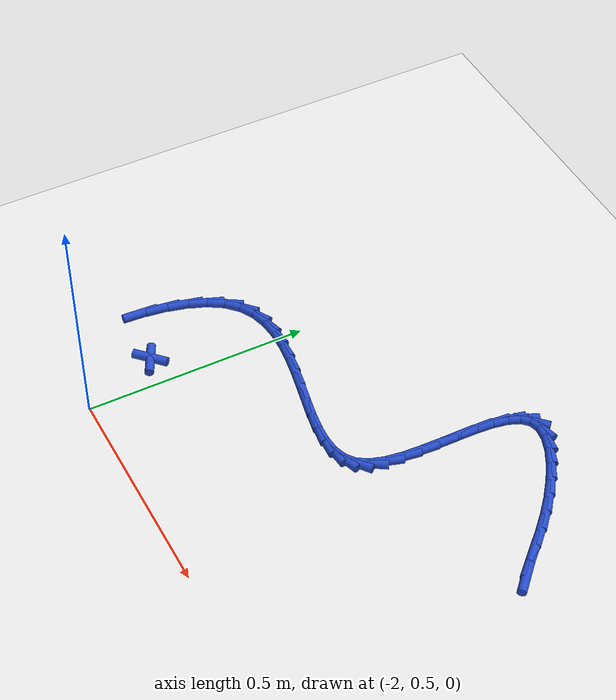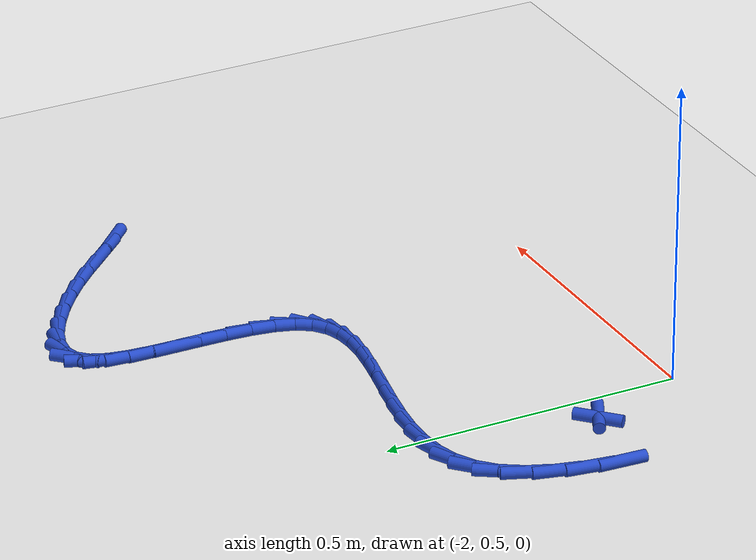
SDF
<sdf version="1.6">
 <world name="default">
  <model name="ground_plane">
   <static>1</static>
   <link name="link">
    <collision name="collision">
     <geometry><plane><normal>0 0 1</normal><size>100 100</size></plane></geometry>
     <surface><friction><ode><mu>100</mu><mu2>50</mu2></ode></friction></surface>
    </collision>
    <visual name="visual">
     <cast_shadows>0</cast_shadows>
     <geometry><plane><normal>0 0 1</normal><size>100 100</size></plane></geometry>
     <material>
      <script><uri>file://media/materials/scripts/gazebo.material</uri><name>Gazebo/WhiteGlow</name></script>
     </material>
    </visual>
   </link>
  </model>
  <model name="line">
   <link name="link_69">
    <pose>-1.1922946631569908 1.0798102987483564 0.01 0 1.57 -0.7629444473544437</pose>
    <collision name="collision">
     <geometry><cylinder><radius>0.01</radius><length>0.08</length></cylinder></geometry>
    </collision>
    <visual name="visual">
     <material>
      <script><name>Gazebo/Blue</name><uri>file://media/materials/scripts/gazebo.material</uri></script>
     </material>
     <geometry><cylinder><radius>0.01</radius><length>0.08</length></cylinder></geometry>
    </visual>
   </link>
   <link name="link_70">
    <pose>-1.218243340656762 1.1046190908667255 0.01 0 1.57 -0.8084517191448768</pose>
    <collision name="collision">
     <geometry><cylinder><radius>0.01</radius><length>0.08</length></cylinder></geometry>
    </collision>
    <visual name="visual">
     <material>
      <script><name>Gazebo/Blue</name><uri>file://media/materials/scripts/gazebo.material</uri></script>
     </material>
     <geometry><cylinder><radius>0.01</radius><length>0.08</length></cylinder></geometry>
    </visual>
   </link>
   <link name="link_71">
    <pose>-1.245517909465978 1.1331811198854238 0.01 0 1.57 -0.8101593806659703</pose>
    <collision name="collision">
     <geometry><cylinder><radius>0.01</radius><length>0.08</length></cylinder></geometry>
    </collision>
    <visual name="visual">
     <material>
      <script><name>Gazebo/Blue</name><uri>file://media/materials/scripts/gazebo.material</uri></script>
     </material>
     <geometry><cylinder><radius>0.01</radius><length>0.08</length></cylinder></geometry>
    </visual>
   </link>
   <link name="link_72">
    <pose>-1.2747112133799994 1.163857164797513 0.01 0 1.57 -0.7765861091051673</pose>
    <collision name="collision">
     <geometry><cylinder><radius>0.01</radius><length>0.08</length></cylinder></geometry>
    </collision>
    <visual name="visual">
     <material>
      <script><name>Gazebo/Blue</name><uri>file://media/materials/scripts/gazebo.material</uri></script>
     </material>
     <geometry><cylinder><radius>0.01</radius><length>0.08</length></cylinder></geometry>
    </visual>
   </link>
   <link name="link_73">
    <pose>-1.306415970015183 1.1950080200310216 0.01 0 1.57 -0.7177834358554924</pose>
    <collision name="collision">
     <geometry><cylinder><radius>0.01</radius><length>0.08</length></cylinder></geometry>
    </collision>
    <visual name="visual">
     <material>
      <script><name>Gazebo/Blue</name><uri>file://media/materials/scripts/gazebo.material</uri></script>
     </material>
     <geometry><cylinder><radius>0.01</radius><length>0.08</length></cylinder></geometry>
    </visual>
   </link>
   <link name="link_74">
    <pose>-1.3408159598698612 1.2250445036392608 0.01 0 1.57 -0.6527471059041948</pose>
    <collision name="collision">
     <geometry><cylinder><radius>0.01</radius><length>0.08</length></cylinder></geometry>
    </collision>
    <visual name="visual">
     <material>
      <script><name>Gazebo/Blue</name><uri>file://media/materials/scripts/gazebo.material</uri></script>
     </material>
     <geometry><cylinder><radius>0.01</radius><length>0.08</length></cylinder></geometry>
    </visual>
   </link>
   <link name="link_75">
    <pose>-1.3767772297744654 1.2525386267106566 0.01 0 1.57 -0.5778486185933497</pose>
    <collision name="collision">
     <geometry><cylinder><radius>0.01</radius><length>0.08</length></cylinder></geometry>
    </collision>
    <visual name="visual">
     <material>
      <script><name>Gazebo/Blue</name><uri>file://media/materials/scripts/gazebo.material</uri></script>
     </material>
     <geometry><cylinder><radius>0.01</radius><length>0.08</length></cylinder></geometry>
    </visual>
   </link>
   <link name="link_76">
    <pose>-1.4129009139773259 1.2760948060193875 0.01 0 1.57 -0.48135170137967137</pose>
    <collision name="collision">
     <geometry><cylinder><radius>0.01</radius><length>0.08</length></cylinder></geometry>
    </collision>
    <visual name="visual">
     <material>
      <script><name>Gazebo/Blue</name><uri>file://media/materials/scripts/gazebo.material</uri></script>
     </material>
     <geometry><cylinder><radius>0.01</radius><length>0.08</length></cylinder></geometry>
    </visual>
   </link>
   <link name="link_77">
    <pose>-1.4477881467267752 1.2943174583396329 0.01 0 1.57 -0.342336333454044</pose>
    <collision name="collision">
     <geometry><cylinder><radius>0.01</radius><length>0.08</length></cylinder></geometry>
    </collision>
    <visual name="visual">
     <material>
      <script><name>Gazebo/Blue</name><uri>file://media/materials/scripts/gazebo.material</uri></script>
     </material>
     <geometry><cylinder><radius>0.01</radius><length>0.08</length></cylinder></geometry>
    </visual>
   </link>
   <link name="link_78">
    <pose>-1.4800400622711452 1.3058110004455716 0.01 0 1.57 -0.11882522096740321</pose>
    <collision name="collision">
     <geometry><cylinder><radius>0.01</radius><length>0.08</length></cylinder></geometry>
    </collision>
    <visual name="visual">
     <material>
      <script><name>Gazebo/Blue</name><uri>file://media/materials/scripts/gazebo.material</uri></script>
     </material>
     <geometry><cylinder><radius>0.01</radius><length>0.08</length></cylinder></geometry>
    </visual>
   </link>
   <link name="link_79">
    <pose>-1.5082577948587668 1.3091798491113833 0.01 0 1.57 0.2636939724423228</pose>
    <collision name="collision">
     <geometry><cylinder><radius>0.01</radius><length>0.08</length></cylinder></geometry>
    </collision>
    <visual name="visual">
     <material>
      <script><name>Gazebo/Blue</name><uri>file://media/materials/scripts/gazebo.material</uri></script>
     </material>
     <geometry><cylinder><radius>0.01</radius><length>0.08</length></cylinder></geometry>
    </visual>
   </link>
   <link name="link_80">
    <pose>-1.5310424787379726 1.3030284211112466 0.01 0 1.57 0.7930607881551159</pose>
    <collision name="collision">
     <geometry><cylinder><radius>0.01</radius><length>0.08</length></cylinder></geometry>
    </collision>
    <visual name="visual">
     <material>
      <script><name>Gazebo/Blue</name><uri>file://media/materials/scripts/gazebo.material</uri></script>
     </material>
     <geometry><cylinder><radius>0.01</radius><length>0.08</length></cylinder></geometry>
    </visual>
   </link>
   <link name="link_81">
    <pose>-1.5473813077872067 1.2864372569419997 0.01 0 1.57 1.1793538248620565</pose>
    <collision name="collision">
     <geometry><cylinder><radius>0.01</radius><length>0.08</length></cylinder></geometry>
    </collision>
    <visual name="visual">
     <material>
      <script><name>Gazebo/Blue</name><uri>file://media/materials/scripts/gazebo.material</uri></script>
     </material>
     <geometry><cylinder><radius>0.01</radius><length>0.08</length></cylinder></geometry>
    </visual>
   </link>
   <link name="link_82">
    <pose>-1.5580216276266965 1.2606576757428825 0.01 0 1.57 1.385898772386969</pose>
    <collision name="collision">
     <geometry><cylinder><radius>0.01</radius><length>0.08</length></cylinder></geometry>
    </collision>
    <visual name="visual">
     <material>
      <script><name>Gazebo/Blue</name><uri>file://media/materials/scripts/gazebo.material</uri></script>
     </material>
     <geometry><cylinder><radius>0.01</radius><length>0.08</length></cylinder></geometry>
    </visual>
   </link>
   <link name="link_83">
    <pose>-1.5642121401841587 1.2275593146871413 0.01 0 1.57 1.4933989534422432</pose>
    <collision name="collision">
     <geometry><cylinder><radius>0.01</radius><length>0.08</length></cylinder></geometry>
    </collision>
    <visual name="visual">
     <material>
      <script><name>Gazebo/Blue</name><uri>file://media/materials/scripts/gazebo.material</uri></script>
     </material>
     <geometry><cylinder><radius>0.01</radius><length>0.08</length></cylinder></geometry>
    </visual>
   </link>
   <link name="link_84">
    <pose>-1.5672015838978188 1.189011855976093 0.01 0 1.57 1.5461824935037016</pose>
    <collision name="collision">
     <geometry><cylinder><radius>0.01</radius><length>0.08</length></cylinder></geometry>
    </collision>
    <visual name="visual">
     <material>
      <script><name>Gazebo/Blue</name><uri>file://media/materials/scripts/gazebo.material</uri></script>
     </material>
     <geometry><cylinder><radius>0.01</radius><length>0.08</length></cylinder></geometry>
    </visual>
   </link>
   <link name="link_85">
    <pose>-1.5682386972059044 1.1468849818110531 0.01 0 1.57 1.5631881900068427</pose>
    <collision name="collision">
     <geometry><cylinder><radius>0.01</radius><length>0.08</length></cylinder></geometry>
    </collision>
    <visual name="visual">
     <material>
      <script><name>Gazebo/Blue</name><uri>file://media/materials/scripts/gazebo.material</uri></script>
     </material>
     <geometry><cylinder><radius>0.01</radius><length>0.08</length></cylinder></geometry>
    </visual>
   </link>
   <link name="link_86">
    <pose>-1.5685722185466422 1.1030483743933368 0.01 0 1.57 1.5506814797772175</pose>
    <collision name="collision">
     <geometry><cylinder><radius>0.01</radius><length>0.08</length></cylinder></geometry>
    </collision>
    <visual name="visual">
     <material>
      <script><name>Gazebo/Blue</name><uri>file://media/materials/scripts/gazebo.material</uri></script>
     </material>
     <geometry><cylinder><radius>0.01</radius><length>0.08</length></cylinder></geometry>
    </visual>
   </link>
   <link name="link_87">
    <pose>-1.5694508863582575 1.0593717159242613 0.01 0 1.57 1.5067126833468216</pose>
    <collision name="collision">
     <geometry><cylinder><radius>0.01</radius><length>0.08</length></cylinder></geometry>
    </collision>
    <visual name="visual">
     <material>
      <script><name>Gazebo/Blue</name><uri>file://media/materials/scripts/gazebo.material</uri></script>
     </material>
     <geometry><cylinder><radius>0.01</radius><length>0.08</length></cylinder></geometry>
    </visual>
   </link>
   <link name="link_88">
    <pose>-1.572123439078978 1.0177246886051428 0.01 0 1.57 1.4205330090842452</pose>
    <collision name="collision">
     <geometry><cylinder><radius>0.01</radius><length>0.08</length></cylinder></geometry>
    </collision>
    <visual name="visual">
     <material>
      <script><name>Gazebo/Blue</name><uri>file://media/materials/scripts/gazebo.material</uri></script>
     </material>
     <geometry><cylinder><radius>0.01</radius><length>0.08</length></cylinder></geometry>
    </visual>
   </link>
   <link name="link_89">
    <pose>-1.5778386151470294 0.9799769746372962 0.01 0 1.57 1.2675357836685441</pose>
    <collision name="collision">
     <geometry><cylinder><radius>0.01</radius><length>0.08</length></cylinder></geometry>
    </collision>
    <visual name="visual">
     <material>
      <script><name>Gazebo/Blue</name><uri>file://media/materials/scripts/gazebo.material</uri></script>
     </material>
     <geometry><cylinder><radius>0.01</radius><length>0.08</length></cylinder></geometry>
    </visual>
   </link>
   <link name="link_90">
    <pose>-1.5878451530006394 0.9479982562220381 0.01 0 1.57 1.0031749493380477</pose>
    <collision name="collision">
     <geometry><cylinder><radius>0.01</radius><length>0.08</length></cylinder></geometry>
    </collision>
    <visual name="visual">
     <material>
      <script><name>Gazebo/Blue</name><uri>file://media/materials/scripts/gazebo.material</uri></script>
     </material>
     <geometry><cylinder><radius>0.01</radius><length>0.08</length></cylinder></geometry>
    </visual>
   </link>
   <link name="link_91">
    <pose>-1.6033781760910821 0.92363723120992 0.01 0 1.57 0.6407603487222537</pose>
    <collision name="collision">
     <geometry><cylinder><radius>0.01</radius><length>0.08</length></cylinder></geometry>
    </collision>
    <visual name="visual">
     <material>
      <script><name>Gazebo/Blue</name><uri>file://media/materials/scripts/gazebo.material</uri></script>
     </material>
     <geometry><cylinder><radius>0.01</radius><length>0.08</length></cylinder></geometry>
    </visual>
   </link>
   <link name="link_92">
    <pose>-1.6249158930397312 0.9075759884531699 0.01 0 1.57 0.3175982405952256</pose>
    <collision name="collision">
     <geometry><cylinder><radius>0.01</radius><length>0.08</length></cylinder></geometry>
    </collision>
    <visual name="visual">
     <material>
      <script><name>Gazebo/Blue</name><uri>file://media/materials/scripts/gazebo.material</uri></script>
     </material>
     <geometry><cylinder><radius>0.01</radius><length>0.08</length></cylinder></geometry>
    </visual>
   </link>
   <link name="link_93">
    <pose>-1.6517965441296751 0.8987396194924154 0.01 0 1.57 0.08974647550719567</pose>
    <collision name="collision">
     <geometry><cylinder><radius>0.01</radius><length>0.08</length></cylinder></geometry>
    </collision>
    <visual name="visual">
     <material>
      <script><name>Gazebo/Blue</name><uri>file://media/materials/scripts/gazebo.material</uri></script>
     </material>
     <geometry><cylinder><radius>0.01</radius><length>0.08</length></cylinder></geometry>
    </visual>
   </link>
   <link name="link_94">
    <pose>-1.6832640935882182 0.8959079111514779 0.01 0 1.57 -0.055264545491171393</pose>
    <collision name="collision">
     <geometry><cylinder><radius>0.01</radius><length>0.08</length></cylinder></geometry>
    </collision>
    <visual name="visual">
     <material>
      <script><name>Gazebo/Blue</name><uri>file://media/materials/scripts/gazebo.material</uri></script>
     </material>
     <geometry><cylinder><radius>0.01</radius><length>0.08</length></cylinder></geometry>
    </visual>
   </link>
   <link name="link_95">
    <pose>-1.7185625056426617 0.8978606502541779 0.01 0 1.57 -0.14279288857099598</pose>
    <collision name="collision">
     <geometry><cylinder><radius>0.01</radius><length>0.08</length></cylinder></geometry>
    </collision>
    <visual name="visual">
     <material>
      <script><name>Gazebo/Blue</name><uri>file://media/materials/scripts/gazebo.material</uri></script>
     </material>
     <geometry><cylinder><radius>0.01</radius><length>0.08</length></cylinder></geometry>
    </visual>
   </link>
   <link name="link_96">
    <pose>-1.7569357445203089 0.903377623624336 0.01 0 1.57 -0.19083191138974856</pose>
    <collision name="collision">
     <geometry><cylinder><radius>0.01</radius><length>0.08</length></cylinder></geometry>
    </collision>
    <visual name="visual">
     <material>
      <script><name>Gazebo/Blue</name><uri>file://media/materials/scripts/gazebo.material</uri></script>
     </material>
     <geometry><cylinder><radius>0.01</radius><length>0.08</length></cylinder></geometry>
    </visual>
   </link>
   <link name="link_97">
    <pose>-1.7976277744484623 0.9112386180857729 0.01 0 1.57 -0.2095135632527881</pose>
    <collision name="collision">
     <geometry><cylinder><radius>0.01</radius><length>0.08</length></cylinder></geometry>
    </collision>
    <visual name="visual">
     <material>
      <script><name>Gazebo/Blue</name><uri>file://media/materials/scripts/gazebo.material</uri></script>
     </material>
     <geometry><cylinder><radius>0.01</radius><length>0.08</length></cylinder></geometry>
    </visual>
   </link>
   <link name="link_98">
    <pose>-1.8398825596544262 0.9202234204623096 0.01 0 1.57 -0.20355295743199653</pose>
    <collision name="collision">
     <geometry><cylinder><radius>0.01</radius><length>0.08</length></cylinder></geometry>
    </collision>
    <visual name="visual">
     <material>
      <script><name>Gazebo/Blue</name><uri>file://media/materials/scripts/gazebo.material</uri></script>
     </material>
     <geometry><cylinder><radius>0.01</radius><length>0.08</length></cylinder></geometry>
    </visual>
   </link>
   <link name="link_99">
    <pose>-1.8829440643655035 0.9291118175777673 0.01 0 1.57 -0.17385654352929056</pose>
    <collision name="collision">
     <geometry><cylinder><radius>0.01</radius><length>0.08</length></cylinder></geometry>
    </collision>
    <visual name="visual">
     <material>
      <script><name>Gazebo/Blue</name><uri>file://media/materials/scripts/gazebo.material</uri></script>
     </material>
     <geometry><cylinder><radius>0.01</radius><length>0.08</length></cylinder></geometry>
    </visual>
   </link>
   <link name="link_100">
    <pose>-1.9260562528089957 0.9366835962559659 0.01 0 1.57 -0.11817638044137264</pose>
    <collision name="collision">
     <geometry><cylinder><radius>0.01</radius><length>0.08</length></cylinder></geometry>
    </collision>
    <visual name="visual">
     <material>
      <script><name>Gazebo/Blue</name><uri>file://media/materials/scripts/gazebo.material</uri></script>
     </material>
     <geometry><cylinder><radius>0.01</radius><length>0.08</length></cylinder></geometry>
    </visual>
   </link>
   <link name="link_101">
    <pose>-1.968463089212206 0.9417185433207266 0.01 0 1.57 -0.031199746131370675</pose>
    <collision name="collision">
     <geometry><cylinder><radius>0.01</radius><length>0.08</length></cylinder></geometry>
    </collision>
    <visual name="visual">
     <material>
      <script><name>Gazebo/Blue</name><uri>file://media/materials/scripts/gazebo.material</uri></script>
     </material>
     <geometry><cylinder><radius>0.01</radius><length>0.08</length></cylinder></geometry>
    </visual>
   </link>
   <link name="link_102">
    <pose>-2.0094085378024387 0.9429964455958703 0.01 0 1.57 0.09523247041256058</pose>
    <collision name="collision">
     <geometry><cylinder><radius>0.01</radius><length>0.08</length></cylinder></geometry>
    </collision>
    <visual name="visual">
     <material>
      <script><name>Gazebo/Blue</name><uri>file://media/materials/scripts/gazebo.material</uri></script>
     </material>
     <geometry><cylinder><radius>0.01</radius><length>0.08</length></cylinder></geometry>
    </visual>
   </link>
   <link name="link_103">
    <pose>-2.0481365628069947 0.9392970899052171 0.01 0 1.57 0.2700379256716555</pose>
    <collision name="collision">
     <geometry><cylinder><radius>0.01</radius><length>0.08</length></cylinder></geometry>
    </collision>
    <visual name="visual">
     <material>
      <script><name>Gazebo/Blue</name><uri>file://media/materials/scripts/gazebo.material</uri></script>
     </material>
     <geometry><cylinder><radius>0.01</radius><length>0.08</length></cylinder></geometry>
    </visual>
   </link>
   <link name="link_104">
    <pose>-2.0838911284531783 0.9294002630725886 0.01 0 1.57 0.4956401666273879</pose>
    <collision name="collision">
     <geometry><cylinder><radius>0.01</radius><length>0.08</length></cylinder></geometry>
    </collision>
    <visual name="visual">
     <material>
      <script><name>Gazebo/Blue</name><uri>file://media/materials/scripts/gazebo.material</uri></script>
     </material>
     <geometry><cylinder><radius>0.01</radius><length>0.08</length></cylinder></geometry>
    </visual>
   </link>
   <link name="link_105">
    <pose>-2.115916198968291 0.9120857519218053 0.01 0 1.57 0.7557364006954953</pose>
    <collision name="collision">
     <geometry><cylinder><radius>0.01</radius><length>0.08</length></cylinder></geometry>
    </collision>
    <visual name="visual">
     <material>
      <script><name>Gazebo/Blue</name><uri>file://media/materials/scripts/gazebo.material</uri></script>
     </material>
     <geometry><cylinder><radius>0.01</radius><length>0.08</length></cylinder></geometry>
    </visual>
   </link>
   <link name="link_106">
    <pose>-2.143455738579638 0.8861333432766879 0.01 0 1.57 1.009842142570312</pose>
    <collision name="collision">
     <geometry><cylinder><radius>0.01</radius><length>0.08</length></cylinder></geometry>
    </collision>
    <visual name="visual">
     <material>
      <script><name>Gazebo/Blue</name><uri>file://media/materials/scripts/gazebo.material</uri></script>
     </material>
     <geometry><cylinder><radius>0.01</radius><length>0.08</length></cylinder></geometry>
    </visual>
   </link>
   <link name="link_107">
    <pose>-2.165809842082632 0.8505534764735079 0.01 0 1.57 1.1992103605465183</pose>
    <collision name="collision">
     <geometry><cylinder><radius>0.01</radius><length>0.08</length></cylinder></geometry>
    </collision>
    <visual name="visual">
     <material>
      <script><name>Gazebo/Blue</name><uri>file://media/materials/scripts/gazebo.material</uri></script>
     </material>
     <geometry><cylinder><radius>0.01</radius><length>0.08</length></cylinder></geometry>
    </visual>
   </link>
   <link name="link_108">
    <pose>-2.18286817100015 0.8067792466584116 0.01 0 1.57 1.3309456635427008</pose>
    <collision name="collision">
     <geometry><cylinder><radius>0.01</radius><length>0.08</length></cylinder></geometry>
    </collision>
    <visual name="visual">
     <material>
      <script><name>Gazebo/Blue</name><uri>file://media/materials/scripts/gazebo.material</uri></script>
     </material>
     <geometry><cylinder><radius>0.01</radius><length>0.08</length></cylinder></geometry>
    </visual>
   </link>
   <link name="link_109">
    <pose>-2.194872848784207 0.7576920904469814 0.01 0 1.57 1.4319288320552377</pose>
    <collision name="collision">
     <geometry><cylinder><radius>0.01</radius><length>0.08</length></cylinder></geometry>
    </collision>
    <visual name="visual">
     <material>
      <script><name>Gazebo/Blue</name><uri>file://media/materials/scripts/gazebo.material</uri></script>
     </material>
     <geometry><cylinder><radius>0.01</radius><length>0.08</length></cylinder></geometry>
    </visual>
   </link>
   <link name="link_110">
    <pose>-2.2020707378944575 0.7061929180510198 0.01 0 1.57 1.5191280137718226</pose>
    <collision name="collision">
     <geometry><cylinder><radius>0.01</radius><length>0.08</length></cylinder></geometry>
    </collision>
    <visual name="visual">
     <material>
      <script><name>Gazebo/Blue</name><uri>file://media/materials/scripts/gazebo.material</uri></script>
     </material>
     <geometry><cylinder><radius>0.01</radius><length>0.08</length></cylinder></geometry>
    </visual>
   </link>
   <link name="link_122">
    <pose>-2.065206630940232 0.669610024974072 0.01 0 1.57 -0.47287700632164476</pose>
    <collision name="collision">
     <geometry><cylinder><radius>0.01</radius><length>0.08</length></cylinder></geometry>
    </collision>
    <visual name="visual">
     <material>
      <script><name>Gazebo/Blue</name><uri>file://media/materials/scripts/gazebo.material</uri></script>
     </material>
     <geometry><cylinder><radius>0.01</radius><length>0.08</length></cylinder></geometry>
    </visual>
   </link>
   <link name="link_123">
    <pose>-2.0695169119984214 0.6718151240860637 0.01 0 1.57 0.7624022305374293</pose>
    <collision name="collision">
     <geometry><cylinder><radius>0.01</radius><length>0.08</length></cylinder></geometry>
    </collision>
    <visual name="visual">
     <material>
      <script><name>Gazebo/Blue</name><uri>file://media/materials/scripts/gazebo.material</uri></script>
     </material>
     <geometry><cylinder><radius>0.01</radius><length>0.08</length></cylinder></geometry>
    </visual>
   </link>
  </model>
 </world>
</sdf>
